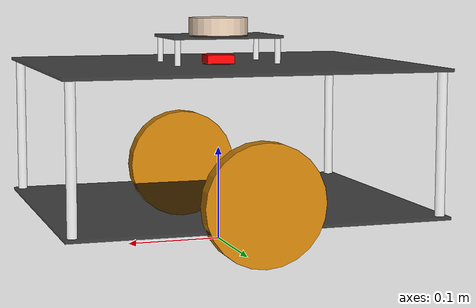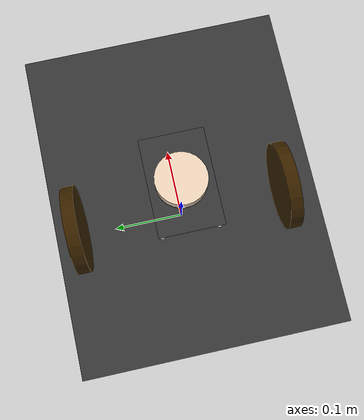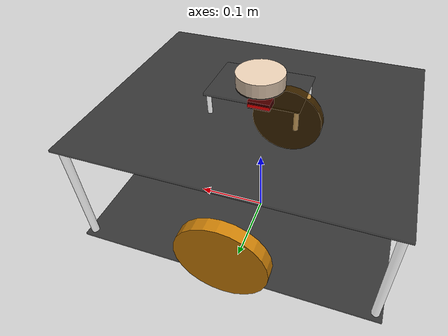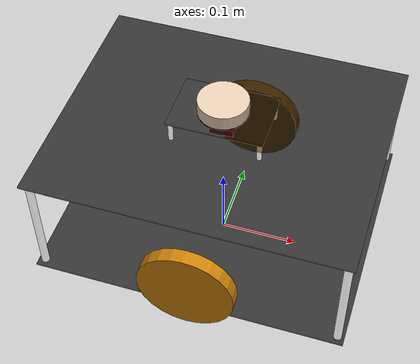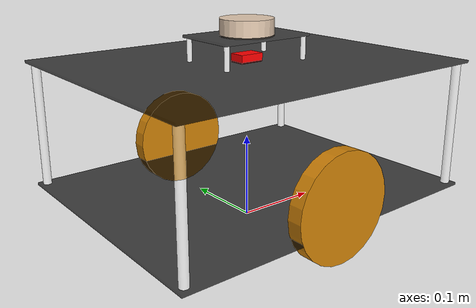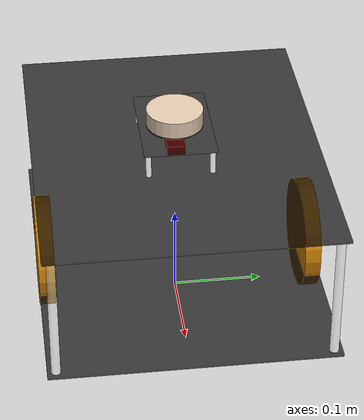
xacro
<?xml version="1.0" ?>
<robot name="test_robot" xmlns:xacro="http://ros.org/wiki/xacro">

    <material name="black">
        <color rgba="0.0 0.0 0.0 0.7"/>
    </material>

    <material name="orange">
        <color rgba="0.8 0.5 0.03 1.0"/>
    </material>

    <material name="sliver">
        <color rgba="1.0 1.0 1.0 0.4"/>
    </material>

    <material name="sliver_1">
        <color rgba="0.9 0.8 0.7 1.0"/>
    </material>

    <material name="red">
        <color rgba="1 0.0 0.0 1.0"/>
    </material>

    <link name="base_footprint"/>

    <joint name="base_joint" type="fixed">
        <parent link="base_footprint"/>
        <child link="base_link"/>
        <origin xyz="0.0 0.0 0.0395" rpy="0 0 0"/>
    </joint>

    <link name="base_link">
        <visual>
        <origin xyz="0.0 0.0 0.0" rpy="0 0 0"/>
        <geometry>
        <box size="0.3970 0.319 0.003"/>
        </geometry>
        <material name="black"/>
        </visual>

        <collision>
        <origin xyz="0.0 0.0 0.0" rpy="0 0 0"/>
        <geometry>
        <box size="0.3970 0.3970 0.003"/>
        </geometry>
        </collision>

    </link>

    <joint name="header_joint" type="fixed">
        <parent link="base_link"/>
        <child link="header_link"/>
        <origin xyz="0.0 0.0 0.151" rpy="0 0 0"/>
    </joint>

    <link name="header_link">
        <visual>
        <origin xyz="0.0 0.0 0.0" rpy="0 0 0"/>
        <geometry>
        <box size="0.3970 0.319 0.003"/>
        </geometry>
        <material name="black"/>
        </visual>

        <collision>
        <origin xyz="0.0 0.0 0.0" rpy="0 0 0"/>
        <geometry>
        <box size="0.3970 0.319 0.003"/>
        </geometry>
        </collision>
    </link>

    <joint name="imu_joint" type="fixed">
        <parent link="header_link"/>
        <child link="imu_link"/>
        <origin xyz="0.0 0.0 0.005" rpy="0 0 0"/>
    </joint>

    <link name="imu_link">
        <visual>
        <origin xyz="0.0 0.0 0.0" rpy="0 0 0"/>
        <geometry>
        <box size="0.03 0.02 0.01"/>
        </geometry>
        <material name="red"/>
        </visual>

        <collision>
        <origin xyz="0.0 0.0 0.0" rpy="0 0 0"/>
        <geometry>
        <box size="0.03 0.02 0.01"/>
        </geometry>
        </collision>
    </link>

    <joint name="wheel_left_joint" type="continuous">
        <parent link="base_link"/>
        <child link="wheel_left_link"/>
        <origin xyz="0.0 -0.1505 0.023" rpy="1.57 0.0 0.0"/>
        <axis xyz="0 0 1"/>
    </joint>

    <link name="wheel_left_link">
        <visual>
        <origin xyz="0.0 0.0 0.0" rpy="0.0 0.0 0.0"/>
        <geometry>
        <cylinder length="0.018" radius="0.0625"/>
        </geometry>
        <material name="orange"/>
        </visual>

        <collision>
        <origin xyz="0.0 0.0 0.0" rpy="0.0 0.0 0.0"/>
        <geometry>
            <cylinder length="0.018" radius="0.0625"/>
        </geometry>
        </collision>
    </link>

    <joint name="wheel_right_joint" type="continuous">
        <parent link="base_link"/>
        <child link="wheel_right_link"/>
        <origin xyz="0.0 0.15052 0.023" rpy="1.57 0.0 0.0"/>
        <axis xyz="0 0 1"/>
    </joint>

    <link name="wheel_right_link">
        <visual>
        <origin xyz="0.0 0.0 0.0" rpy="0.0 0.0 0.0"/>
        <geometry>
        <cylinder length="0.018" radius="0.0625"/>
        </geometry>
        <material name="orange"/>
        </visual>

        <collision>
        <origin xyz="0.0 0.0 0.0" rpy="0.0 0.0 0.0"/>
        <geometry>
            <cylinder length="0.018" radius="0.0625"/>
        </geometry>
        </collision>
    </link>

    <link name="base_scan">
        <visual>
        <origin xyz="0.0 0.0 0.01" rpy="0.0 0.0 0.0"/>
        <geometry>
        <cylinder length="0.02" radius="0.0315"/>
        </geometry>
        <material name="sliver_1"/>
        </visual>

        <collision>
        <origin xyz="0.0 0.0 0.01" rpy="0.0 0.0 0.0"/>
        <geometry>
        <cylinder length="0.02" radius="0.0315"/>
        </geometry>
        </collision>
    </link>

    <joint name="ridar_joint" type="fixed">
        <parent link="ridar_base_link"/>
        <child link="base_scan"/>
        <origin xyz="0.0 0.0 0.0 " rpy="0.0 0.0 0.0"/>
        <axis xyz="0 0 1"/>
    </joint>

    <link name="suport_link_1">
        <visual>
        <origin xyz="0.0 0.0 0.0755" rpy="0.0 0.0 0.0"/>
        <geometry>
        <cylinder length="0.151" radius="0.005"/>
        </geometry>
        <material name="sliver"/>
        </visual>

        <collision>
        <origin xyz="0.0 0.0 0.0755" rpy="0.0 0.0 0.0"/>
        <geometry>
        <cylinder length="0.151" radius="0.005"/>
        </geometry>
        </collision>
    </link>

    <joint name="suport_joint_1" type="fixed">
        <parent link="base_link"/>
        <child link="suport_link_1"/>
        <origin xyz="-0.19 -0.15 0.0 " rpy="0.0 0.0 0.0"/>
    </joint>

    <link name="suport_link_2">
        <visual>
        <origin xyz="0.0 0.0 0.0755" rpy="0.0 0.0 0.0"/>
        <geometry>
        <cylinder length="0.151" radius="0.005"/>
        </geometry>
        <material name="sliver"/>
        </visual>

        <collision>
        <origin xyz="0.0 0.0 0.0755" rpy="0.0 0.0 0.0"/>
        <geometry>
        <cylinder length="0.151" radius="0.005"/>
        </geometry>
        </collision>
    </link>

    <joint name="suport_joint_2" type="fixed">
        <parent link="base_link"/>
        <child link="suport_link_2"/>
        <origin xyz="0.19 -0.15 0.0 " rpy="0.0 0.0 0.0"/>
    </joint>

    <link name="suport_link_3">
        <visual>
        <origin xyz="0.0 0.0 0.0755" rpy="0.0 0.0 0.0"/>
        <geometry>
        <cylinder length="0.151" radius="0.005"/>
        </geometry>
        <material name="sliver"/>
        </visual>

        <collision>
        <origin xyz="0.0 0.0 0.0755" rpy="0.0 0.0 0.0"/>
        <geometry>
        <cylinder length="0.151" radius="0.005"/>
        </geometry>
        </collision>
    </link>

    <joint name="suport_joint_3" type="fixed">
        <parent link="base_link"/>
        <child link="suport_link_3"/>
        <origin xyz="-0.19 0.15 0.0 " rpy="0.0 0.0 0.0"/>
    </joint>

    <link name="suport_link_4">
        <visual>
        <origin xyz="0.0 0.0 0.0755" rpy="0.0 0.0 0.0"/>
        <geometry>
        <cylinder length="0.151" radius="0.005"/>
        </geometry>
        <material name="sliver"/>
        </visual>

        <collision>
        <origin xyz="0.0 0.0 0.0755" rpy="0.0 0.0 0.0"/>
        <geometry>
        <cylinder length="0.151" radius="0.005"/>
        </geometry>
        </collision>
    </link>

    <joint name="suport_joint_4" type="fixed">
        <parent link="base_link"/>
        <child link="suport_link_4"/>
        <origin xyz="0.19 0.15 0.0 " rpy="0.0 0.0 0.0"/>
    </joint>

    <link name="ridar_base_link">
        <visual>
        <origin xyz="0.0 0.0 0.0" rpy="0.0 0.0 0.0"/>
        <geometry>
        <box size="0.12 0.08 0.003"/>
        </geometry>
        <material name="black"/>
        </visual>

        <collision>
        <origin xyz="0.0 0.0 0.0" rpy="0.0 0.0 0.0"/>
        <geometry>
        <box size="0.3970 0.3970 0.003"/>
        </geometry>
        </collision>
    </link>

    <joint name="ridar_base_joint" type="fixed">
        <parent link="header_link"/>
        <child link="ridar_base_link"/>
        <origin xyz="0.0 0.0 0.03 " rpy="0.0 0.0 0.0"/>
        <axis xyz="0 0 1"/>
    </joint>

    <link name="suport_link_10">
        <visual>
        <origin xyz="0.0 0.0 0.015" rpy="0.0 0.0 0.0"/>
        <geometry>
        <cylinder length="0.03" radius="0.003"/>
        </geometry>
        <material name="sliver"/>
        </visual>

        <collision>
        <origin xyz="0.0 0.0 0.0755" rpy="0.0 0.0 0.0"/>
        <geometry>
        <cylinder length="0.151" radius="0.005"/>
        </geometry>
        </collision>
    </link>

    <joint name="suport_joint_10" type="fixed">
        <parent link="header_link"/>
        <child link="suport_link_10"/>
        <origin xyz="-0.055 -0.035 0.0 " rpy="0.0 0.0 0.0"/>
        <axis xyz="0 0 1"/>
    </joint>

     <link name="suport_link_20">
        <visual>
        <origin xyz="0.0 0.0 0.015" rpy="0.0 0.0 0.0"/>
        <geometry>
        <cylinder length="0.03" radius="0.003"/>
        </geometry>
        <material name="sliver"/>
        </visual>

        <collision>
        <origin xyz="0.0 0.0 0.0755" rpy="0.0 0.0 0.0"/>
        <geometry>
        <cylinder length="0.151" radius="0.005"/>
        </geometry>
        </collision>
    </link>

    <joint name="suport_joint_20" type="fixed">
        <parent link="header_link"/>
        <child link="suport_link_20"/>
        <origin xyz="-0.055 0.035 0.0 " rpy="0.0 0.0 0.0"/>
        <axis xyz="0 0 1"/>
    </joint>

     <link name="suport_link_30">
        <visual>
        <origin xyz="0.0 0.0 0.015" rpy="0.0 0.0 0.0"/>
        <geometry>
        <cylinder length="0.03" radius="0.003"/>
        </geometry>
        <material name="sliver"/>
        </visual>

        <collision>
        <origin xyz="0.0 0.0 0.0755" rpy="0.0 0.0 0.0"/>
        <geometry>
        <cylinder length="0.151" radius="0.005"/>
        </geometry>
        </collision>
    </link>

    <joint name="suport_joint_30" type="fixed">
        <parent link="header_link"/>
        <child link="suport_link_30"/>
        <origin xyz="0.055 -0.035 0.0 " rpy="0.0 0.0 0.0"/>
        <axis xyz="0 0 1"/>
    </joint>

     <link name="suport_link_40">
        <visual>
        <origin xyz="0.0 0.0 0.015" rpy="0.0 0.0 0.0"/>
        <geometry>
        <cylinder length="0.03" radius="0.003"/>
        </geometry>
        <material name="sliver"/>
        </visual>

        <collision>
        <origin xyz="0.0 0.0 0.0755" rpy="0.0 0.0 0.0"/>
        <geometry>
        <cylinder length="0.151" radius="0.005"/>
        </geometry>
        </collision>
    </link>

    <joint name="suport_joint_40" type="fixed">
        <parent link="header_link"/>
        <child link="suport_link_40"/>
        <origin xyz="0.055 0.035 0.0 " rpy="0.0 0.0 0.0"/>
        <axis xyz="0 0 1"/>
    </joint>

</robot>
